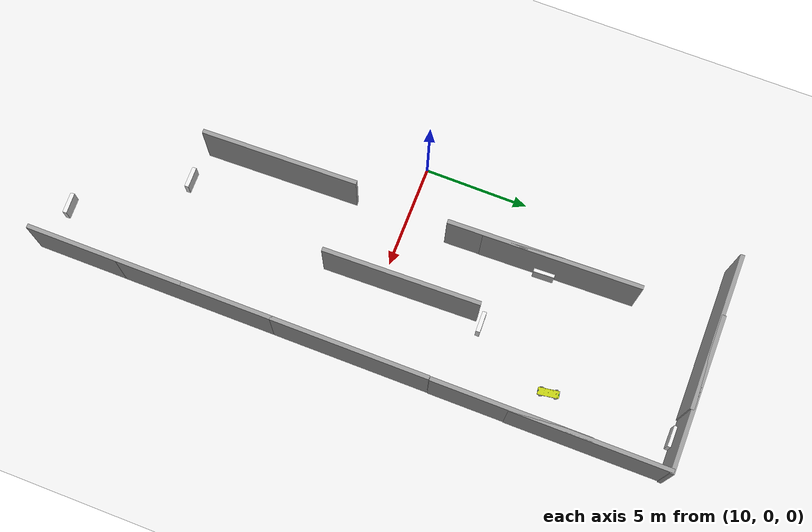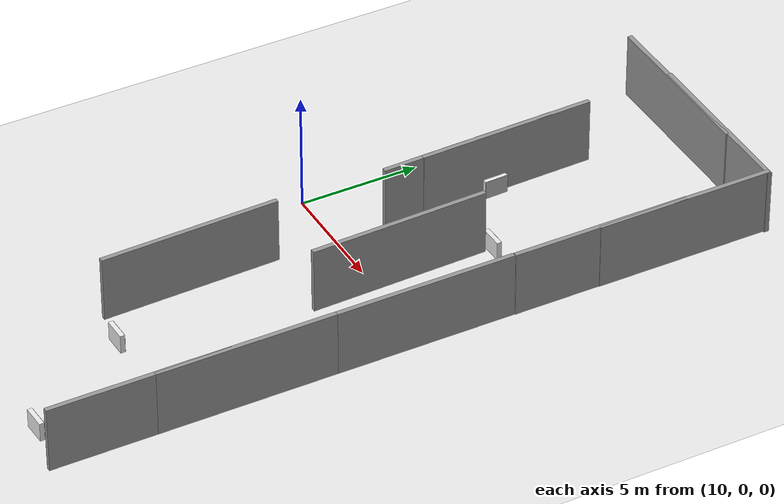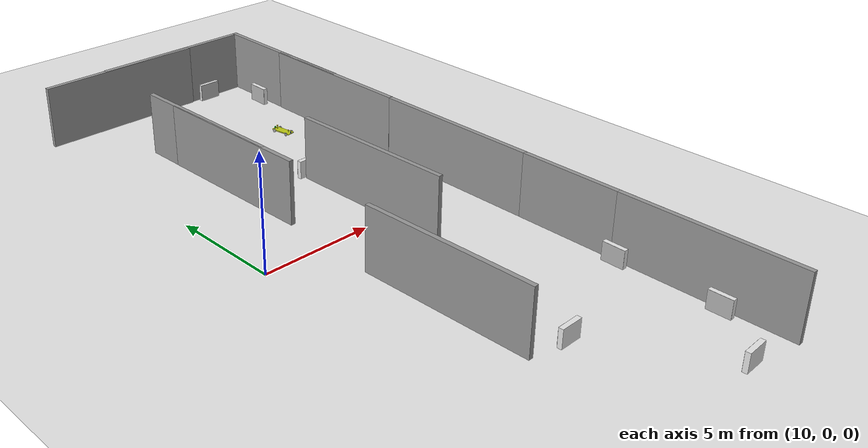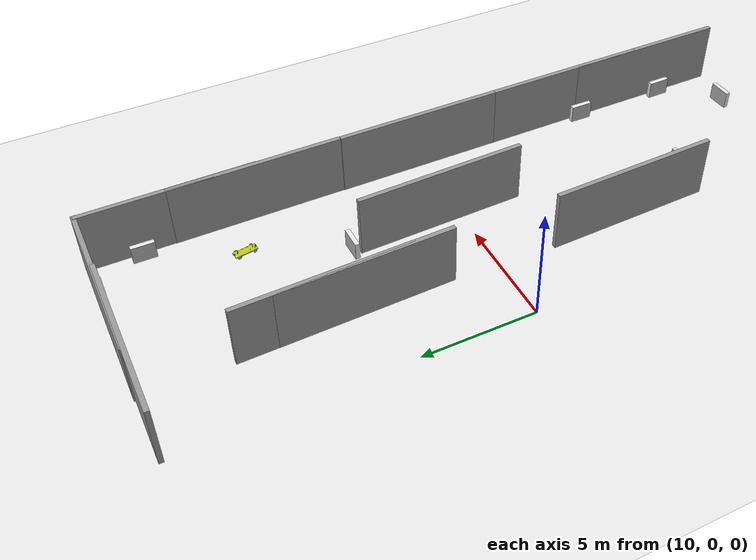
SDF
<sdf version="1.7">
 <world name="default">
  <model name="ground_plane">
   <static>1</static>
   <link name="link">
    <collision name="collision">
     <geometry><plane><normal>0 0 1</normal><size>100 100</size></plane></geometry>
     <surface><friction><ode><mu>100</mu><mu2>50</mu2></ode></friction></surface>
    </collision>
    <visual name="visual">
     <cast_shadows>0</cast_shadows>
     <geometry><plane><normal>0 0 1</normal><size>100 100</size></plane></geometry>
     <material>
      <script><uri>file://media/materials/scripts/gazebo.material</uri><name>Gazebo/White</name></script>
     </material>
    </visual>
   </link>
  </model>
  <model name="left_dir_sign">
   <static>1</static>
   <pose>19.7451 -12.6831 0.45 0 -0 0</pose>
   <link name="link">
    <inertial>
     <mass>1</mass>
     <inertia>
      <ixx>0.166667</ixx>
      <ixy>0</ixy>
      <ixz>0</ixz>
      <iyy>0.166667</iyy>
      <iyz>0</iyz>
      <izz>0.166667</izz>
     </inertia>
    </inertial>
    <collision name="collision"><geometry><box><size>0.2 1 0.8</size></box></geometry></collision>
    <visual name="visual_body">
     <geometry><box><size>0.2 1 0.8</size></box></geometry>
     <material>
      <script><name>Gazebo/White</name><uri>file://media/materials/scripts/gazebo.material</uri></script>
     </material>
    </visual>
    <visual name="front_face">
     <geometry><box><size>0.01 1 0.8</size></box></geometry>
     <material>
      <script><uri>model://arrow_detection/worlds/map_1_materials</uri><name>right/Diffuse</name></script>
     </material>
     <pose>-0.101 0 0 3.14 -0 0</pose>
    </visual>
   </link>
  </model>
  <model name="grey_wall_clone_clone_clone_0_clone">
   <static>1</static>
   <link name="link">
    <pose>0 0 1.4 0 -0 0.1</pose>
    <collision name="collision"><geometry><box><size>7.5 0.2 2.8</size></box></geometry></collision>
    <visual name="visual">
     <cast_shadows>0</cast_shadows>
     <geometry><box><size>7.5 0.2 2.8</size></box></geometry>
     <material>
      <script>
       <uri>model://grey_wall/materials/scripts</uri>
       <uri>model://grey_wall/materials/textures</uri>
       <name>vrc/grey_wall</name>
      </script>
     </material>
    </visual>
   </link>
   <pose>12.8518 -6.21682 0.1 0 0 -1.64658</pose>
  </model>
  <model name="grey_wall_clone_clone_clone_0_clone_0">
   <static>1</static>
   <link name="link">
    <pose>0 0 1.4 0 -0 0.1</pose>
    <collision name="collision"><geometry><box><size>7.5 0.2 2.8</size></box></geometry></collision>
    <visual name="visual">
     <cast_shadows>0</cast_shadows>
     <geometry><box><size>7.5 0.2 2.8</size></box></geometry>
     <material>
      <script>
       <uri>model://grey_wall/materials/scripts</uri>
       <uri>model://grey_wall/materials/textures</uri>
       <name>vrc/grey_wall</name>
      </script>
     </material>
    </visual>
   </link>
   <pose>16.1502 0.986887 0.1 0 0 -1.64658</pose>
  </model>
  <model name="grey_wall_clone_clone_clone_0_clone_1">
   <static>1</static>
   <link name="link">
    <pose>0 0 1.4 0 -0 0.1</pose>
    <collision name="collision"><geometry><box><size>7.5 0.2 2.8</size></box></geometry></collision>
    <visual name="visual">
     <cast_shadows>0</cast_shadows>
     <geometry><box><size>7.5 0.2 2.8</size></box></geometry>
     <material>
      <script>
       <uri>model://grey_wall/materials/scripts</uri>
       <uri>model://grey_wall/materials/textures</uri>
       <name>vrc/grey_wall</name>
      </script>
     </material>
    </visual>
   </link>
   <pose>12.9051 5.75959 0.1 0 0 -1.64658</pose>
  </model>
  <model name="left_dir_sign_clone">
   <static>1</static>
   <pose>18.1792 14.7547 0.45 0 -0 1.55884</pose>
   <link name="link">
    <inertial>
     <mass>1</mass>
     <inertia>
      <ixx>0.166667</ixx>
      <ixy>0</ixy>
      <ixz>0</ixz>
      <iyy>0.166667</iyy>
      <iyz>0</iyz>
      <izz>0.166667</izz>
     </inertia>
    </inertial>
    <collision name="collision"><geometry><box><size>0.2 1 0.8</size></box></geometry></collision>
    <visual name="visual_body">
     <geometry><box><size>0.2 1 0.8</size></box></geometry>
     <material>
      <script><name>Gazebo/White</name><uri>file://media/materials/scripts/gazebo.material</uri></script>
     </material>
    </visual>
    <visual name="front_face">
     <geometry><box><size>0.01 1 0.8</size></box></geometry>
     <material>
      <script><uri>model://arrow_detection/worlds/map_1_materials</uri><name>right/Diffuse</name></script>
     </material>
     <pose>-0.101 0 0 3.14 -0 0</pose>
    </visual>
   </link>
  </model>
  <model name="rover_proto_A1_rviz">
   <link name="Chassis">
    <inertial>
     <pose>-0.003619 -4e-06 -0.025334 0 -0 0</pose>
     <mass>18.0919</mass>
     <inertia>
      <ixx>0.190571</ixx>
      <ixy>-3.70553e-06</ixy>
      <ixz>0.00402853</ixz>
      <iyy>1.55584</iyy>
      <iyz>-8.33152e-06</iyz>
      <izz>1.731</izz>
     </inertia>
    </inertial>
    <collision name="Chassis_collision">
     <geometry>
      <mesh>
       <scale>1 1 1</scale>
       <uri>model://line_following_rover/urdf/rover_proto_A1/meshes/Chassis.STL</uri>
      </mesh>
     </geometry>
    </collision>
    <collision name="Chassis_fixed_joint_lump__Camera_Back_Link_collision_1">
     <pose>-0.50128 0 0.046965 0 -0 0</pose>
     <geometry>
      <mesh>
       <scale>1 1 1</scale>
       <uri>model://line_following_rover/urdf/rover_proto_A1/meshes/Camera_Back_Link.STL</uri>
      </mesh>
     </geometry>
    </collision>
    <collision name="Chassis_fixed_joint_lump__Camera_Fwd_Link_collision_2">
     <pose>0.49872 0 0.046965 0 -0 0</pose>
     <geometry>
      <mesh>
       <scale>1 1 1</scale>
       <uri>model://line_following_rover/urdf/rover_proto_A1/meshes/Camera_Fwd_Link.STL</uri>
      </mesh>
     </geometry>
    </collision>
    <collision name="Chassis_fixed_joint_lump__Lidar_Back_Link_collision_3">
     <pose>-0.34128 0 0.166 0 -0 1.57</pose>
     <geometry>
      <mesh>
       <scale>1 1 1</scale>
       <uri>model://line_following_rover/urdf/rover_proto_A1/meshes/Lidar_Back_Link.STL</uri>
      </mesh>
     </geometry>
    </collision>
    <collision name="Chassis_fixed_joint_lump__Lidar_Fwd_Link_collision_4">
     <pose>0.33872 0 0.116 0 0 -1.57</pose>
     <geometry>
      <mesh>
       <scale>1 1 1</scale>
       <uri>model://line_following_rover/urdf/rover_proto_A1/meshes/Lidar_Fwd_Link.STL</uri>
      </mesh>
     </geometry>
    </collision>
    <collision name="Chassis_fixed_joint_lump__Lights_Back_Link_collision_5">
     <geometry>
      <mesh>
       <scale>1 1 1</scale>
       <uri>model://line_following_rover/urdf/rover_proto_A1/meshes/Lights_Back_Link.STL</uri>
      </mesh>
     </geometry>
    </collision>
    <collision name="Chassis_fixed_joint_lump__Lights_Fwd_Link_collision_6">
     <geometry>
      <mesh>
       <scale>1 1 1</scale>
       <uri>model://line_following_rover/urdf/rover_proto_A1/meshes/Lights_Fwd_Link.STL</uri>
      </mesh>
     </geometry>
    </collision>
    <collision name="Chassis_fixed_joint_lump__Lights_Left_Link_collision_7">
     <geometry>
      <mesh>
       <scale>1 1 1</scale>
       <uri>model://line_following_rover/urdf/rover_proto_A1/meshes/Lights_Left_Link.STL</uri>
      </mesh>
     </geometry>
    </collision>
    <collision name="Chassis_fixed_joint_lump__Lights_Right_Link_collision_8">
     <geometry>
      <mesh>
       <scale>1 1 1</scale>
       <uri>model://line_following_rover/urdf/rover_proto_A1/meshes/Lights_Right_Link.STL</uri>
      </mesh>
     </geometry>
    </collision>
    <visual name="Chassis_visual">
     <geometry>
      <mesh>
       <scale>1 1 1</scale>
       <uri>model://line_following_rover/urdf/rover_proto_A1/meshes/Chassis.dae</uri>
      </mesh>
     </geometry>
    </visual>
    <visual name="Chassis_fixed_joint_lump__Camera_Back_Link_visual_1">
     <pose>-0.50128 0 0.046965 0 -0 0</pose>
     <geometry>
      <mesh>
       <scale>1 1 1</scale>
       <uri>model://line_following_rover/urdf/rover_proto_A1/meshes/Camera_Back_Link.dae</uri>
      </mesh>
     </geometry>
    </visual>
    <visual name="Chassis_fixed_joint_lump__Camera_Fwd_Link_visual_2">
     <pose>0.49872 0 0.046965 0 -0 0</pose>
     <geometry>
      <mesh>
       <scale>1 1 1</scale>
       <uri>model://line_following_rover/urdf/rover_proto_A1/meshes/Camera_Fwd_Link.STL</uri>
      </mesh>
     </geometry>
     <material>
      <script><name>Gazebo/Blue</name><uri>file://media/materials/scripts/gazebo.material</uri></script>
     </material>
    </visual>
    <visual name="Chassis_fixed_joint_lump__Lidar_Back_Link_visual_3">
     <pose>-0.34128 0 0.166 0 -0 1.57</pose>
     <geometry>
      <mesh>
       <scale>1 1 1</scale>
       <uri>model://line_following_rover/urdf/rover_proto_A1/meshes/Lidar_Back_Link.STL</uri>
      </mesh>
     </geometry>
     <material>
      <script><name>Gazebo/Red</name><uri>file://media/materials/scripts/gazebo.material</uri></script>
     </material>
    </visual>
    <visual name="Chassis_fixed_joint_lump__Lidar_Fwd_Link_visual_4">
     <pose>0.33872 0 0.116 0 0 -1.57</pose>
     <geometry>
      <mesh>
       <scale>1 1 1</scale>
       <uri>model://line_following_rover/urdf/rover_proto_A1/meshes/Lidar_Fwd_Link.STL</uri>
      </mesh>
     </geometry>
     <material>
      <script><name>Gazebo/Red</name><uri>file://media/materials/scripts/gazebo.material</uri></script>
     </material>
    </visual>
    <visual name="Chassis_fixed_joint_lump__Lights_Back_Link_visual_5">
     <geometry>
      <mesh>
       <scale>1 1 1</scale>
       <uri>model://line_following_rover/urdf/rover_proto_A1/meshes/Lights_Back_Link.STL</uri>
      </mesh>
     </geometry>
    </visual>
    <visual name="Chassis_fixed_joint_lump__Lights_Fwd_Link_visual_6">
     <geometry>
      <mesh>
       <scale>1 1 1</scale>
       <uri>model://line_following_rover/urdf/rover_proto_A1/meshes/Lights_Fwd_Link.STL</uri>
      </mesh>
     </geometry>
    </visual>
    <visual name="Chassis_fixed_joint_lump__Lights_Left_Link_visual_7">
     <geometry>
      <mesh>
       <scale>1 1 1</scale>
       <uri>model://line_following_rover/urdf/rover_proto_A1/meshes/Lights_Left_Link.STL</uri>
      </mesh>
     </geometry>
    </visual>
    <visual name="Chassis_fixed_joint_lump__Lights_Right_Link_visual_8">
     <geometry>
      <mesh>
       <scale>1 1 1</scale>
       <uri>model://line_following_rover/urdf/rover_proto_A1/meshes/Lights_Right_Link.STL</uri>
      </mesh>
     </geometry>
    </visual>
    <sensor name="camera_scan_back" type="camera">
     <visualize>1</visualize>
     <update_rate>30</update_rate>
     <camera name="cam_back">
      <horizontal_fov>1.39626</horizontal_fov>
      <image><width>800</width><height>800</height><format>R8G8B8</format></image>
      <clip><near>0.02</near><far>300</far></clip>
      <noise><type>gaussian</type><mean>0</mean><stddev>0.007</stddev></noise>
     </camera>
     <plugin name="camera_driver_bck" filename="libgazebo_ros_camera.so">
      <updateRate>0.0</updateRate>
      <cameraName>/camera_back</cameraName>
      <imageTopicName>image_raw</imageTopicName>
      <cameraInfoTopicName>camera_info</cameraInfoTopicName>
      <frameName>Camera_Back_Link_Frame</frameName>
      <hackBaseline>0.07</hackBaseline>
     </plugin>
     <pose>-0.50128 0 0.046965 0 -0 -3.14159</pose>
     <alwaysOn>1</alwaysOn>
    </sensor>
    <sensor name="camera_scan_fwd" type="camera">
     <visualize>1</visualize>
     <update_rate>30</update_rate>
     <camera name="cam_fwd">
      <horizontal_fov>1.39626</horizontal_fov>
      <image><width>800</width><height>800</height><format>R8G8B8</format></image>
      <clip><near>0.02</near><far>300</far></clip>
      <noise><type>gaussian</type><mean>0</mean><stddev>0.007</stddev></noise>
     </camera>
     <plugin name="camera_driver_fwd" filename="libgazebo_ros_camera.so">
      <updateRate>0.0</updateRate>
      <cameraName>/camera_fwd</cameraName>
      <imageTopicName>image_raw</imageTopicName>
      <cameraInfoTopicName>camera_info</cameraInfoTopicName>
      <frameName>Camera_Fwd_Link</frameName>
      <hackBaseline>0.07</hackBaseline>
     </plugin>
     <pose>0.49872 0 0.046965 0 -0 0</pose>
     <alwaysOn>1</alwaysOn>
    </sensor>
    <sensor name="gazebo_lidar_back" type="ray">
     <visualize>1</visualize>
     <update_rate>12</update_rate>
     <plugin name="gazebo_lidar_back" filename="libgazebo_ros_ray_sensor.so">
      <ros><remapping>~/out:=lidar_scan_back</remapping></ros>
      <output_type>sensor_msgs/LaserScan</output_type>
      <frame_name>Lidar_Back_Link</frame_name>
     </plugin>
     <ray>
      <scan>
       <horizontal>
        <samples>360</samples>
        <resolution>1</resolution>
        <min_angle>0</min_angle>
        <max_angle>3.14</max_angle>
       </horizontal>
       <vertical><samples>1</samples><min_angle>0</min_angle><max_angle>0</max_angle></vertical>
      </scan>
      <range><min>0.12</min><max>3.5</max><resolution>0.015</resolution></range>
      <noise><type>gaussian</type><mean>0</mean><stddev>0.01</stddev></noise>
     </ray>
     <pose>-0.34128 0 0.166 0 -0 1.57</pose>
    </sensor>
    <sensor name="gazebo_lidar_fwd" type="ray">
     <visualize>1</visualize>
     <update_rate>12</update_rate>
     <plugin name="gazebo_lidar_fwd" filename="libgazebo_ros_ray_sensor.so">
      <ros><remapping>~/out:=lidar_scan_fwd</remapping></ros>
      <output_type>sensor_msgs/LaserScan</output_type>
      <frame_name>Lidar_Fwd_Link</frame_name>
     </plugin>
     <ray>
      <scan>
       <horizontal>
        <samples>360</samples>
        <resolution>1</resolution>
        <min_angle>0</min_angle>
        <max_angle>3.14</max_angle>
       </horizontal>
       <vertical><samples>1</samples><min_angle>0</min_angle><max_angle>0</max_angle></vertical>
      </scan>
      <range><min>0.12</min><max>3.5</max><resolution>0.015</resolution></range>
      <noise><type>gaussian</type><mean>0</mean><stddev>0.01</stddev></noise>
     </ray>
     <pose>0.33872 0 0.116 0 0 -1.57</pose>
    </sensor>
   </link>
   <joint name="Wheel_1_Joint" type="revolute">
    <pose relative_to="Chassis">0.34872 -0.215 -0.04 1.5708 -0 0</pose>
    <parent>Chassis</parent>
    <child>Wheel_1_Link</child>
    <axis>
     <xyz>0 0 -1</xyz>
     <limit><effort>10</effort><velocity>12</velocity><lower>-1e+16</lower><upper>1e+16</upper></limit>
     <dynamics>
      <damping>0.25</damping>
      <friction>0.5</friction>
      <spring_reference>0</spring_reference>
      <spring_stiffness>0</spring_stiffness>
     </dynamics>
    </axis>
   </joint>
   <link name="Wheel_1_Link">
    <pose relative_to="Wheel_1_Joint">0 0 0 0 -0 0</pose>
    <inertial>
     <pose>0 -0 -0.016853 0 -0 0</pose>
     <mass>0.456818</mass>
     <inertia>
      <ixx>0.000768197</ixx>
      <ixy>4.1359e-21</ixy>
      <ixz>-4.91914e-19</ixz>
      <iyy>0.000768197</iyy>
      <iyz>2.33003e-19</iyz>
      <izz>0.00134492</izz>
     </inertia>
    </inertial>
    <collision name="Wheel_1_Link_collision">
     <geometry>
      <mesh>
       <scale>1 1 1</scale>
       <uri>model://line_following_rover/urdf/rover_proto_A1/meshes/Wheel_1_Link.STL</uri>
      </mesh>
     </geometry>
    </collision>
    <visual name="Wheel_1_Link_visual">
     <geometry>
      <mesh>
       <scale>1 1 1</scale>
       <uri>model://line_following_rover/urdf/rover_proto_A1/meshes/Wheel_1_Link.STL</uri>
      </mesh>
     </geometry>
    </visual>
   </link>
   <joint name="Wheel_2_Joint" type="revolute">
    <pose relative_to="Chassis">0.34872 0.215 -0.04 1.5708 -0 0</pose>
    <parent>Chassis</parent>
    <child>Wheel_2_Link</child>
    <axis>
     <xyz>0 0 -1</xyz>
     <limit><effort>10</effort><velocity>12</velocity><lower>-1e+16</lower><upper>1e+16</upper></limit>
     <dynamics>
      <damping>0.25</damping>
      <friction>0.5</friction>
      <spring_reference>0</spring_reference>
      <spring_stiffness>0</spring_stiffness>
     </dynamics>
    </axis>
   </joint>
   <link name="Wheel_2_Link">
    <pose relative_to="Wheel_2_Joint">0 0 0 0 -0 0</pose>
    <inertial>
     <pose>-0 0 0.016853 0 -0 0</pose>
     <mass>0.456818</mass>
     <inertia>
      <ixx>0.000768197</ixx>
      <ixy>1.02115e-18</ixy>
      <ixz>-7.60711e-19</ixz>
      <iyy>0.000768197</iyy>
      <iyz>3.64043e-19</iyz>
      <izz>0.00134492</izz>
     </inertia>
    </inertial>
    <collision name="Wheel_2_Link_collision">
     <geometry>
      <mesh>
       <scale>1 1 1</scale>
       <uri>model://line_following_rover/urdf/rover_proto_A1/meshes/Wheel_2_Link.STL</uri>
      </mesh>
     </geometry>
    </collision>
    <visual name="Wheel_2_Link_visual">
     <geometry>
      <mesh>
       <scale>1 1 1</scale>
       <uri>model://line_following_rover/urdf/rover_proto_A1/meshes/Wheel_2_Link.STL</uri>
      </mesh>
     </geometry>
    </visual>
   </link>
   <joint name="Wheel_3_Joint" type="revolute">
    <pose relative_to="Chassis">-0.35128 0.21499 -0.04 1.5708 -0 0</pose>
    <parent>Chassis</parent>
    <child>Wheel_3_Link</child>
    <axis>
     <xyz>0 0 -1</xyz>
     <limit><effort>10</effort><velocity>12</velocity><lower>-1e+16</lower><upper>1e+16</upper></limit>
     <dynamics>
      <damping>0.25</damping>
      <friction>0.5</friction>
      <spring_reference>0</spring_reference>
      <spring_stiffness>0</spring_stiffness>
     </dynamics>
    </axis>
   </joint>
   <link name="Wheel_3_Link">
    <pose relative_to="Wheel_3_Joint">0 0 0 0 -0 0</pose>
    <inertial>
     <pose>-0 -0 0.016853 0 -0 0</pose>
     <mass>0.456818</mass>
     <inertia>
      <ixx>0.000768197</ixx>
      <ixy>-1.88597e-19</ixy>
      <ixz>-4.93382e-19</ixz>
      <iyy>0.000768197</iyy>
      <iyz>-2.11063e-19</iyz>
      <izz>0.00134492</izz>
     </inertia>
    </inertial>
    <collision name="Wheel_3_Link_collision">
     <geometry>
      <mesh>
       <scale>1 1 1</scale>
       <uri>model://line_following_rover/urdf/rover_proto_A1/meshes/Wheel_3_Link.STL</uri>
      </mesh>
     </geometry>
    </collision>
    <visual name="Wheel_3_Link_visual">
     <geometry>
      <mesh>
       <scale>1 1 1</scale>
       <uri>model://line_following_rover/urdf/rover_proto_A1/meshes/Wheel_3_Link.STL</uri>
      </mesh>
     </geometry>
    </visual>
   </link>
   <joint name="Wheel_4_Joint" type="revolute">
    <pose relative_to="Chassis">-0.35128 -0.215 -0.04 1.5708 -0 0</pose>
    <parent>Chassis</parent>
    <child>Wheel_4_Link</child>
    <axis>
     <xyz>0 0 -1</xyz>
     <limit><effort>10</effort><velocity>12</velocity><lower>-1e+16</lower><upper>1e+16</upper></limit>
     <dynamics>
      <damping>0.25</damping>
      <friction>0.5</friction>
      <spring_reference>0</spring_reference>
      <spring_stiffness>0</spring_stiffness>
     </dynamics>
    </axis>
   </joint>
   <link name="Wheel_4_Link">
    <pose relative_to="Wheel_4_Joint">0 0 0 0 -0 0</pose>
    <inertial>
     <pose>0 0 -0.016853 0 -0 0</pose>
     <mass>0.456818</mass>
     <inertia>
      <ixx>0.000768197</ixx>
      <ixy>-7.84271e-19</ixy>
      <ixz>-6.61935e-19</ixz>
      <iyy>0.000768197</iyy>
      <iyz>-2.6149e-19</iyz>
      <izz>0.00134492</izz>
     </inertia>
    </inertial>
    <collision name="Wheel_4_Link_collision">
     <geometry>
      <mesh>
       <scale>1 1 1</scale>
       <uri>model://line_following_rover/urdf/rover_proto_A1/meshes/Wheel_4_Link.STL</uri>
      </mesh>
     </geometry>
    </collision>
    <visual name="Wheel_4_Link_visual">
     <geometry>
      <mesh>
       <scale>1 1 1</scale>
       <uri>model://line_following_rover/urdf/rover_proto_A1/meshes/Wheel_4_Link.STL</uri>
      </mesh>
     </geometry>
    </visual>
   </link>
   <static>0</static>
   <plugin name="diff_drive_fwd" filename="libgazebo_ros_diff_drive.so">
    <left_joint>Wheel_2_Joint</left_joint>
    <right_joint>Wheel_1_Joint</right_joint>
    <wheel_separation>0.43</wheel_separation>
    <wheel_diameter>0.16</wheel_diameter>
    <max_wheel_torque>30</max_wheel_torque>
    <max_wheel_acceleration>1.50</max_wheel_acceleration>
    <publish_odom>1</publish_odom>
    <publish_odom_tf>1</publish_odom_tf>
    <publish_wheel_tf>1</publish_wheel_tf>
    <odometry_frame>base_footprint</odometry_frame>
    <robot_base_frame>Chassis</robot_base_frame>
   </plugin>
   <plugin name="diff_drive_back" filename="libgazebo_ros_diff_drive.so">
    <left_joint>Wheel_3_Joint</left_joint>
    <right_joint>Wheel_4_Joint</right_joint>
    <wheel_separation>0.43</wheel_separation>
    <wheel_diameter>0.16</wheel_diameter>
    <max_wheel_torque>30</max_wheel_torque>
    <max_wheel_acceleration>1.50</max_wheel_acceleration>
    <publish_odom>1</publish_odom>
    <publish_odom_tf>1</publish_odom_tf>
    <publish_wheel_tf>1</publish_wheel_tf>
    <odometry_frame>base_footprint</odometry_frame>
    <robot_base_frame>Chassis</robot_base_frame>
   </plugin>
   <pose>18.1536 8.9586 0.219973 -1e-06 -7.5e-05 -1.42343</pose>
  </model>
  <model name="right_dir_sign_clone_1_clone">
   <static>1</static>
   <pose>19.7251 12.6994 0.45 0 0 -0.011074</pose>
   <link name="link">
    <inertial>
     <mass>1</mass>
     <inertia>
      <ixx>0.166667</ixx>
      <ixy>0</ixy>
      <ixz>0</ixz>
      <iyy>0.166667</iyy>
      <iyz>0</iyz>
      <izz>0.166667</izz>
     </inertia>
    </inertial>
    <collision name="collision"><geometry><box><size>0.2 1 0.8</size></box></geometry></collision>
    <visual name="visual_body">
     <geometry><box><size>0.2 1 0.8</size></box></geometry>
     <material>
      <script><name>Gazebo/White</name><uri>file://media/materials/scripts/gazebo.material</uri></script>
     </material>
    </visual>
    <visual name="front_face">
     <geometry><box><size>0.01 1 0.8</size></box></geometry>
     <material>
      <script><uri>model://arrow_detection/worlds/map_1_materials</uri><name>right/Diffuse</name></script>
     </material>
     <pose>-0.101 0 0 0 -0 0</pose>
    </visual>
   </link>
  </model>
  <model name="right_dir_sign_clone_1_clone_0">
   <static>1</static>
   <pose>16.2874 4.98026 0.45 0 0 -1.54855</pose>
   <link name="link">
    <inertial>
     <mass>1</mass>
     <inertia>
      <ixx>0.166667</ixx>
      <ixy>0</ixy>
      <ixz>0</ixz>
      <iyy>0.166667</iyy>
      <iyz>0</iyz>
      <izz>0.166667</izz>
     </inertia>
    </inertial>
    <collision name="collision"><geometry><box><size>0.2 1 0.8</size></box></geometry></collision>
    <visual name="visual_body">
     <geometry><box><size>0.2 1 0.8</size></box></geometry>
     <material>
      <script><name>Gazebo/White</name><uri>file://media/materials/scripts/gazebo.material</uri></script>
     </material>
    </visual>
    <visual name="front_face">
     <geometry><box><size>0.01 1 0.8</size></box></geometry>
     <material>
      <script><uri>model://arrow_detection/worlds/map_1_materials</uri><name>right/Diffuse</name></script>
     </material>
     <pose>-0.101 0 0 0 -0 0</pose>
    </visual>
   </link>
  </model>
  <model name="left_dir_sign_clone_clone_clone_0">
   <static>1</static>
   <pose>13.0512 6.90024 0.45 0 0 -3.11001</pose>
   <link name="link">
    <inertial>
     <mass>1</mass>
     <inertia>
      <ixx>0.166667</ixx>
      <ixy>0</ixy>
      <ixz>0</ixz>
      <iyy>0.166667</iyy>
      <iyz>0</iyz>
      <izz>0.166667</izz>
     </inertia>
    </inertial>
    <collision name="collision"><geometry><box><size>0.2 1 0.8</size></box></geometry></collision>
    <visual name="visual_body">
     <geometry><box><size>0.2 1 0.8</size></box></geometry>
     <material>
      <script><name>Gazebo/White</name><uri>file://media/materials/scripts/gazebo.material</uri></script>
     </material>
    </visual>
    <visual name="front_face">
     <geometry><box><size>0.01 1 0.8</size></box></geometry>
     <material>
      <script><uri>model://arrow_detection/worlds/map_1_materials</uri><name>right/Diffuse</name></script>
     </material>
     <pose>-0.101 0 0 3.14 -0 0</pose>
    </visual>
   </link>
  </model>
  <model name="right_dir_sign_clone_clone">
   <static>1</static>
   <pose>19.7853 -8.2668 0.45 0 0 -0.015903</pose>
   <link name="link">
    <inertial>
     <mass>1</mass>
     <inertia>
      <ixx>0.166667</ixx>
      <ixy>0</ixy>
      <ixz>0</ixz>
      <iyy>0.166667</iyy>
      <iyz>0</iyz>
      <izz>0.166667</izz>
     </inertia>
    </inertial>
    <collision name="collision"><geometry><box><size>0.2 1 0.8</size></box></geometry></collision>
    <visual name="visual_body">
     <geometry><box><size>0.2 1 0.8</size></box></geometry>
     <material>
      <script><name>Gazebo/White</name><uri>file://media/materials/scripts/gazebo.material</uri></script>
     </material>
    </visual>
    <visual name="front_face">
     <geometry><box><size>0.01 1 0.8</size></box></geometry>
     <material>
      <script><uri>model://arrow_detection/worlds/map_1_materials</uri><name>right/Diffuse</name></script>
     </material>
     <pose>-0.101 0 0 0 -0 0</pose>
    </visual>
   </link>
  </model>
  <model name="right_dir_sign_clone_clone_0">
   <static>1</static>
   <pose>17.8466 -14.9927 0.45 0 0 -1.53391</pose>
   <link name="link">
    <inertial>
     <mass>1</mass>
     <inertia>
      <ixx>0.166667</ixx>
      <ixy>0</ixy>
      <ixz>0</ixz>
      <iyy>0.166667</iyy>
      <iyz>0</iyz>
      <izz>0.166667</izz>
     </inertia>
    </inertial>
    <collision name="collision"><geometry><box><size>0.2 1 0.8</size></box></geometry></collision>
    <visual name="visual_body">
     <geometry><box><size>0.2 1 0.8</size></box></geometry>
     <material>
      <script><name>Gazebo/White</name><uri>file://media/materials/scripts/gazebo.material</uri></script>
     </material>
    </visual>
    <visual name="front_face">
     <geometry><box><size>0.01 1 0.8</size></box></geometry>
     <material>
      <script><uri>model://arrow_detection/worlds/map_1_materials</uri><name>right/Diffuse</name></script>
     </material>
     <pose>-0.101 0 0 0 -0 0</pose>
    </visual>
   </link>
  </model>
  <model name="left_dir_sign_clone_0">
   <static>1</static>
   <pose>14.6114 -10.1857 0.45 0 0 -1.55543</pose>
   <link name="link">
    <inertial>
     <mass>1</mass>
     <inertia>
      <ixx>0.166667</ixx>
      <ixy>0</ixy>
      <ixz>0</ixz>
      <iyy>0.166667</iyy>
      <iyz>0</iyz>
      <izz>0.166667</izz>
     </inertia>
    </inertial>
    <collision name="collision"><geometry><box><size>0.2 1 0.8</size></box></geometry></collision>
    <visual name="visual_body">
     <geometry><box><size>0.2 1 0.8</size></box></geometry>
     <material>
      <script><name>Gazebo/White</name><uri>file://media/materials/scripts/gazebo.material</uri></script>
     </material>
    </visual>
    <visual name="front_face">
     <geometry><box><size>0.01 1 0.8</size></box></geometry>
     <material>
      <script><uri>model://arrow_detection/worlds/map_1_materials</uri><name>right/Diffuse</name></script>
     </material>
     <pose>-0.101 0 0 3.14 -0 0</pose>
    </visual>
   </link>
  </model>
  <model name="grey_wall_clone_clone_clone_0_clone_1_clone">
   <static>1</static>
   <link name="link">
    <pose>0 0 1.4 0 -0 0.1</pose>
    <collision name="collision"><geometry><box><size>7.5 0.2 2.8</size></box></geometry></collision>
    <visual name="visual">
     <cast_shadows>0</cast_shadows>
     <geometry><box><size>7.5 0.2 2.8</size></box></geometry>
     <material>
      <script>
       <uri>model://grey_wall/materials/scripts</uri>
       <uri>model://grey_wall/materials/textures</uri>
       <name>vrc/grey_wall</name>
      </script>
     </material>
    </visual>
   </link>
   <pose>12.8716 7.46494 0.1 0 0 -1.64658</pose>
  </model>
  <model name="grey_wall_clone_clone_clone_0_clone_0_clone">
   <static>1</static>
   <link name="link">
    <pose>0 0 1.4 0 -0 0.1</pose>
    <collision name="collision"><geometry><box><size>7.5 0.2 2.8</size></box></geometry></collision>
    <visual name="visual">
     <cast_shadows>0</cast_shadows>
     <geometry><box><size>7.5 0.2 2.8</size></box></geometry>
     <material>
      <script>
       <uri>model://grey_wall/materials/scripts</uri>
       <uri>model://grey_wall/materials/textures</uri>
       <name>vrc/grey_wall</name>
      </script>
     </material>
    </visual>
   </link>
   <pose>20.0402 7.56026 0.1235 0 0 -1.67142</pose>
  </model>
  <model name="grey_wall_clone_clone_clone_0_clone_0_clone_clone">
   <static>1</static>
   <link name="link">
    <pose>0 0 1.4 0 -0 0.1</pose>
    <collision name="collision"><geometry><box><size>7.5 0.2 2.8</size></box></geometry></collision>
    <visual name="visual">
     <cast_shadows>0</cast_shadows>
     <geometry><box><size>7.5 0.2 2.8</size></box></geometry>
     <material>
      <script>
       <uri>model://grey_wall/materials/scripts</uri>
       <uri>model://grey_wall/materials/textures</uri>
       <name>vrc/grey_wall</name>
      </script>
     </material>
    </visual>
   </link>
   <pose>20.018 0.03496 0.1235 0 0 -1.67142</pose>
  </model>
  <model name="grey_wall_clone_clone_clone_0_clone_0_clone_clone_0">
   <static>1</static>
   <link name="link">
    <pose>0 0 1.4 0 -0 0.1</pose>
    <collision name="collision"><geometry><box><size>7.5 0.2 2.8</size></box></geometry></collision>
    <visual name="visual">
     <cast_shadows>0</cast_shadows>
     <geometry><box><size>7.5 0.2 2.8</size></box></geometry>
     <material>
      <script>
       <uri>model://grey_wall/materials/scripts</uri>
       <uri>model://grey_wall/materials/textures</uri>
       <name>vrc/grey_wall</name>
      </script>
     </material>
    </visual>
   </link>
   <pose>20.011 -7.39006 0.1235 0 0 -1.67142</pose>
  </model>
  <model name="grey_wall_clone_clone_clone_0_clone_0_clone_clone_1">
   <static>1</static>
   <link name="link">
    <pose>0 0 1.4 0 -0 0.1</pose>
    <collision name="collision"><geometry><box><size>7.5 0.2 2.8</size></box></geometry></collision>
    <visual name="visual">
     <cast_shadows>0</cast_shadows>
     <geometry><box><size>7.5 0.2 2.8</size></box></geometry>
     <material>
      <script>
       <uri>model://grey_wall/materials/scripts</uri>
       <uri>model://grey_wall/materials/textures</uri>
       <name>vrc/grey_wall</name>
      </script>
     </material>
    </visual>
   </link>
   <pose>20.0059 -11.7634 0.1235 0 0 -1.67142</pose>
  </model>
  <model name="grey_wall_clone_2_clone_0">
   <static>1</static>
   <link name="link">
    <pose>0 0 1.4 0 -0 0.1</pose>
    <collision name="collision"><geometry><box><size>7.5 0.2 2.8</size></box></geometry></collision>
    <visual name="visual">
     <cast_shadows>0</cast_shadows>
     <geometry><box><size>7.5 0.2 2.8</size></box></geometry>
     <material>
      <script>
       <uri>model://grey_wall/materials/scripts</uri>
       <uri>model://grey_wall/materials/textures</uri>
       <name>vrc/grey_wall</name>
      </script>
     </material>
    </visual>
   </link>
   <pose>13.4863 14.8585 0.1 0 0 -0.100148</pose>
  </model>
  <model name="grey_wall_clone_2_clone_0_clone">
   <static>1</static>
   <link name="link">
    <pose>0 0 1.4 0 -0 0.1</pose>
    <collision name="collision"><geometry><box><size>7.5 0.2 2.8</size></box></geometry></collision>
    <visual name="visual">
     <cast_shadows>0</cast_shadows>
     <geometry><box><size>7.5 0.2 2.8</size></box></geometry>
     <material>
      <script>
       <uri>model://grey_wall/materials/scripts</uri>
       <uri>model://grey_wall/materials/textures</uri>
       <name>vrc/grey_wall</name>
      </script>
     </material>
    </visual>
   </link>
   <pose>16.4584 14.9124 0.1 0 0 -0.100148</pose>
  </model>
  <model name="grey_wall_clone_clone_clone_0_clone_0_clone_clone_2">
   <static>1</static>
   <link name="link">
    <pose>0 0 1.4 0 -0 0.1</pose>
    <collision name="collision"><geometry><box><size>7.5 0.2 2.8</size></box></geometry></collision>
    <visual name="visual">
     <cast_shadows>0</cast_shadows>
     <geometry><box><size>7.5 0.2 2.8</size></box></geometry>
     <material>
      <script>
       <uri>model://grey_wall/materials/scripts</uri>
       <uri>model://grey_wall/materials/textures</uri>
       <name>vrc/grey_wall</name>
      </script>
     </material>
    </visual>
   </link>
   <pose>20.0638 11.2167 0.1235 0 0 -1.67142</pose>
  </model>
 </world>
</sdf>
